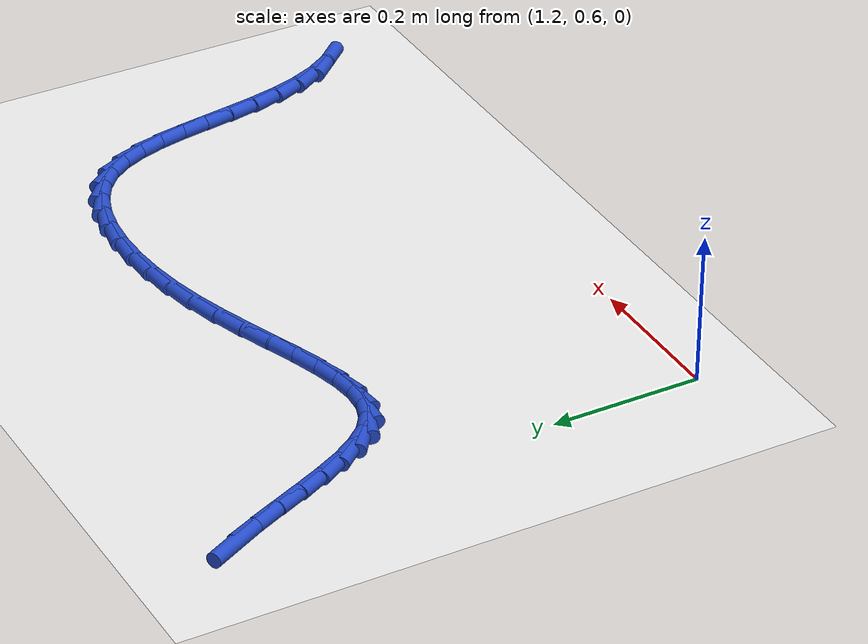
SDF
<sdf version="1.6">
 <world name="default">
  <model name="ground_plane">
   <static>1</static>
   <link name="link">
    <collision name="collision">
     <geometry><plane><normal>0 0 1</normal><size>100 100</size></plane></geometry>
     <surface><friction><ode><mu>100</mu><mu2>50</mu2></ode></friction></surface>
    </collision>
    <visual name="visual">
     <cast_shadows>0</cast_shadows>
     <geometry><plane><normal>0 0 1</normal><size>100 100</size></plane></geometry>
     <material>
      <script><uri>file://media/materials/scripts/gazebo.material</uri><name>Gazebo/WhiteGlow</name></script>
     </material>
    </visual>
   </link>
  </model>
  <model name="line">
   <link name="link_55">
    <pose>1.1598183604236978 1.240889942553588 0.01 0 1.57 -1.0952789635245899</pose>
    <collision name="collision">
     <geometry><cylinder><radius>0.01</radius><length>0.08</length></cylinder></geometry>
    </collision>
    <visual name="visual">
     <material>
      <script><name>Gazebo/Blue</name><uri>file://media/materials/scripts/gazebo.material</uri></script>
     </material>
     <geometry><cylinder><radius>0.01</radius><length>0.08</length></cylinder></geometry>
    </visual>
   </link>
   <link name="link_56">
    <pose>1.178481635220568 1.204645399891093 0.01 0 1.57 -1.139643958567472</pose>
    <collision name="collision">
     <geometry><cylinder><radius>0.01</radius><length>0.08</length></cylinder></geometry>
    </collision>
    <visual name="visual">
     <material>
      <script><name>Gazebo/Blue</name><uri>file://media/materials/scripts/gazebo.material</uri></script>
     </material>
     <geometry><cylinder><radius>0.01</radius><length>0.08</length></cylinder></geometry>
    </visual>
   </link>
   <link name="link_57">
    <pose>1.1956228592819902 1.1673832068081333 0.01 0 1.57 -1.1559299487257806</pose>
    <collision name="collision">
     <geometry><cylinder><radius>0.01</radius><length>0.08</length></cylinder></geometry>
    </collision>
    <visual name="visual">
     <material>
      <script><name>Gazebo/Blue</name><uri>file://media/materials/scripts/gazebo.material</uri></script>
     </material>
     <geometry><cylinder><radius>0.01</radius><length>0.08</length></cylinder></geometry>
    </visual>
   </link>
   <link name="link_58">
    <pose>1.2119254675947835 1.1303679285830492 0.01 0 1.57 -1.1439508892380683</pose>
    <collision name="collision">
     <geometry><cylinder><radius>0.01</radius><length>0.08</length></cylinder></geometry>
    </collision>
    <visual name="visual">
     <material>
      <script><name>Gazebo/Blue</name><uri>file://media/materials/scripts/gazebo.material</uri></script>
     </material>
     <geometry><cylinder><radius>0.01</radius><length>0.08</length></cylinder></geometry>
    </visual>
   </link>
   <link name="link_59">
    <pose>1.2280728951457678 1.0948641304941802 0.01 0 1.57 -1.0995560003882805</pose>
    <collision name="collision">
     <geometry><cylinder><radius>0.01</radius><length>0.08</length></cylinder></geometry>
    </collision>
    <visual name="visual">
     <material>
      <script><name>Gazebo/Blue</name><uri>file://media/materials/scripts/gazebo.material</uri></script>
     </material>
     <geometry><cylinder><radius>0.01</radius><length>0.08</length></cylinder></geometry>
    </visual>
   </link>
   <link name="link_60">
    <pose>1.2447485769217619 1.0621363778198678 0.01 0 1.57 -1.0132528471072597</pose>
    <collision name="collision">
     <geometry><cylinder><radius>0.01</radius><length>0.08</length></cylinder></geometry>
    </collision>
    <visual name="visual">
     <material>
      <script><name>Gazebo/Blue</name><uri>file://media/materials/scripts/gazebo.material</uri></script>
     </material>
     <geometry><cylinder><radius>0.01</radius><length>0.08</length></cylinder></geometry>
    </visual>
   </link>
   <link name="link_61">
    <pose>1.2626359479095854 1.033449235838451 0.01 0 1.57 -0.8685953580897825</pose>
    <collision name="collision">
     <geometry><cylinder><radius>0.01</radius><length>0.08</length></cylinder></geometry>
    </collision>
    <visual name="visual">
     <material>
      <script><name>Gazebo/Blue</name><uri>file://media/materials/scripts/gazebo.material</uri></script>
     </material>
     <geometry><cylinder><radius>0.01</radius><length>0.08</length></cylinder></geometry>
    </visual>
   </link>
   <link name="link_62">
    <pose>1.2824184430960577 1.0100672698282716 0.01 0 1.57 -0.6446859443125712</pose>
    <collision name="collision">
     <geometry><cylinder><radius>0.01</radius><length>0.08</length></cylinder></geometry>
    </collision>
    <visual name="visual">
     <material>
      <script><name>Gazebo/Blue</name><uri>file://media/materials/scripts/gazebo.material</uri></script>
     </material>
     <geometry><cylinder><radius>0.01</radius><length>0.08</length></cylinder></geometry>
    </visual>
   </link>
   <link name="link_63">
    <pose>1.304779497467998 0.9932550450676679 0.01 0 1.57 -0.34712787269608547</pose>
    <collision name="collision">
     <geometry><cylinder><radius>0.01</radius><length>0.08</length></cylinder></geometry>
    </collision>
    <visual name="visual">
     <material>
      <script><name>Gazebo/Blue</name><uri>file://media/materials/scripts/gazebo.material</uri></script>
     </material>
     <geometry><cylinder><radius>0.01</radius><length>0.08</length></cylinder></geometry>
    </visual>
   </link>
   <link name="link_64">
    <pose>1.3303003104585671 0.9840222001581458 0.01 0 1.57 -0.07807522598313596</pose>
    <collision name="collision">
     <geometry><cylinder><radius>0.01</radius><length>0.08</length></cylinder></geometry>
    </collision>
    <visual name="visual">
     <material>
      <script><name>Gazebo/Blue</name><uri>file://media/materials/scripts/gazebo.material</uri></script>
     </material>
     <geometry><cylinder><radius>0.01</radius><length>0.08</length></cylinder></geometry>
    </visual>
   </link>
   <link name="link_65">
    <pose>1.358922267383465 0.9817829826565025 0.01 0 1.57 0.1126037953044279</pose>
    <collision name="collision">
     <geometry><cylinder><radius>0.01</radius><length>0.08</length></cylinder></geometry>
    </collision>
    <visual name="visual">
     <material>
      <script><name>Gazebo/Blue</name><uri>file://media/materials/scripts/gazebo.material</uri></script>
     </material>
     <geometry><cylinder><radius>0.01</radius><length>0.08</length></cylinder></geometry>
    </visual>
   </link>
   <link name="link_66">
    <pose>1.3903397533080506 0.9853357393810549 0.01 0 1.57 0.23565966130081162</pose>
    <collision name="collision">
     <geometry><cylinder><radius>0.01</radius><length>0.08</length></cylinder></geometry>
    </collision>
    <visual name="visual">
     <material>
      <script><name>Gazebo/Blue</name><uri>file://media/materials/scripts/gazebo.material</uri></script>
     </material>
     <geometry><cylinder><radius>0.01</radius><length>0.08</length></cylinder></geometry>
    </visual>
   </link>
   <link name="link_67">
    <pose>1.4242466255802237 0.9934775012746451 0.01 0 1.57 0.30917404496661555</pose>
    <collision name="collision">
     <geometry><cylinder><radius>0.01</radius><length>0.08</length></cylinder></geometry>
    </collision>
    <visual name="visual">
     <material>
      <script><name>Gazebo/Blue</name><uri>file://media/materials/scripts/gazebo.material</uri></script>
     </material>
     <geometry><cylinder><radius>0.01</radius><length>0.08</length></cylinder></geometry>
    </visual>
   </link>
   <link name="link_68">
    <pose>1.4603367415478867 1.005005299280116 0.01 0 1.57 0.3465500750092205</pose>
    <collision name="collision">
     <geometry><cylinder><radius>0.01</radius><length>0.08</length></cylinder></geometry>
    </collision>
    <visual name="visual">
     <material>
      <script><name>Gazebo/Blue</name><uri>file://media/materials/scripts/gazebo.material</uri></script>
     </material>
     <geometry><cylinder><radius>0.01</radius><length>0.08</length></cylinder></geometry>
    </visual>
   </link>
   <link name="link_69">
    <pose>1.4983039585589404 1.0187161643403104 0.01 0 1.57 0.3557548991404628</pose>
    <collision name="collision">
     <geometry><cylinder><radius>0.01</radius><length>0.08</length></cylinder></geometry>
    </collision>
    <visual name="visual">
     <material>
      <script><name>Gazebo/Blue</name><uri>file://media/materials/scripts/gazebo.material</uri></script>
     </material>
     <geometry><cylinder><radius>0.01</radius><length>0.08</length></cylinder></geometry>
    </visual>
   </link>
   <link name="link_70">
    <pose>1.5378421339612864 1.0334071273980712 0.01 0 1.57 0.3407528009899024</pose>
    <collision name="collision">
     <geometry><cylinder><radius>0.01</radius><length>0.08</length></cylinder></geometry>
    </collision>
    <visual name="visual">
     <material>
      <script><name>Gazebo/Blue</name><uri>file://media/materials/scripts/gazebo.material</uri></script>
     </material>
     <geometry><cylinder><radius>0.01</radius><length>0.08</length></cylinder></geometry>
    </visual>
   </link>
   <link name="link_71">
    <pose>1.5786451251028253 1.0478752193962404 0.01 0 1.57 0.30270448738215494</pose>
    <collision name="collision">
     <geometry><cylinder><radius>0.01</radius><length>0.08</length></cylinder></geometry>
    </collision>
    <visual name="visual">
     <material>
      <script><name>Gazebo/Blue</name><uri>file://media/materials/scripts/gazebo.material</uri></script>
     </material>
     <geometry><cylinder><radius>0.01</radius><length>0.08</length></cylinder></geometry>
    </visual>
   </link>
   <link name="link_72">
    <pose>1.62040678933146 1.0609174712776617 0.01 0 1.57 0.24243834349626506</pose>
    <collision name="collision">
     <geometry><cylinder><radius>0.01</radius><length>0.08</length></cylinder></geometry>
    </collision>
    <visual name="visual">
     <material>
      <script><name>Gazebo/Blue</name><uri>file://media/materials/scripts/gazebo.material</uri></script>
     </material>
     <geometry><cylinder><radius>0.01</radius><length>0.08</length></cylinder></geometry>
    </visual>
   </link>
   <link name="link_73">
    <pose>1.6627934653189038 1.0713998072025657 0.01 0 1.57 0.17215603265799068</pose>
    <collision name="collision">
     <geometry><cylinder><radius>0.01</radius><length>0.08</length></cylinder></geometry>
    </collision>
    <visual name="visual">
     <material>
      <script><name>Gazebo/Blue</name><uri>file://media/materials/scripts/gazebo.material</uri></script>
     </material>
     <geometry><cylinder><radius>0.01</radius><length>0.08</length></cylinder></geometry>
    </visual>
   </link>
   <link name="link_74">
    <pose>1.7052352940850517 1.078779473968361 0.01 0 1.57 0.09622256669749692</pose>
    <collision name="collision">
     <geometry><cylinder><radius>0.01</radius><length>0.08</length></cylinder></geometry>
    </collision>
    <visual name="visual">
     <material>
      <script><name>Gazebo/Blue</name><uri>file://media/materials/scripts/gazebo.material</uri></script>
     </material>
     <geometry><cylinder><radius>0.01</radius><length>0.08</length></cylinder></geometry>
    </visual>
   </link>
   <link name="link_75">
    <pose>1.7470421917133776 1.082814702425044 0.01 0 1.57 0.011150624281791624</pose>
    <collision name="collision">
     <geometry><cylinder><radius>0.01</radius><length>0.08</length></cylinder></geometry>
    </collision>
    <visual name="visual">
     <material>
      <script><name>Gazebo/Blue</name><uri>file://media/materials/scripts/gazebo.material</uri></script>
     </material>
     <geometry><cylinder><radius>0.01</radius><length>0.08</length></cylinder></geometry>
    </visual>
   </link>
   <link name="link_76">
    <pose>1.7875231214842948 1.0832661087724023 0.01 0 1.57 -0.08743783355212655</pose>
    <collision name="collision">
     <geometry><cylinder><radius>0.01</radius><length>0.08</length></cylinder></geometry>
    </collision>
    <visual name="visual">
     <material>
      <script><name>Gazebo/Blue</name><uri>file://media/materials/scripts/gazebo.material</uri></script>
     </material>
     <geometry><cylinder><radius>0.01</radius><length>0.08</length></cylinder></geometry>
    </visual>
   </link>
   <link name="link_77">
    <pose>1.8259870466782155 1.0798943092102227 0.01 0 1.57 -0.20499991087251118</pose>
    <collision name="collision">
     <geometry><cylinder><radius>0.01</radius><length>0.08</length></cylinder></geometry>
    </collision>
    <visual name="visual">
     <material>
      <script><name>Gazebo/Blue</name><uri>file://media/materials/scripts/gazebo.material</uri></script>
     </material>
     <geometry><cylinder><radius>0.01</radius><length>0.08</length></cylinder></geometry>
    </visual>
   </link>
   <link name="link_78">
    <pose>1.861742930575553 1.072459919938292 0.01 0 1.57 -0.3479587500149129</pose>
    <collision name="collision">
     <geometry><cylinder><radius>0.01</radius><length>0.08</length></cylinder></geometry>
    </collision>
    <visual name="visual">
     <material>
      <script><name>Gazebo/Blue</name><uri>file://media/materials/scripts/gazebo.material</uri></script>
     </material>
     <geometry><cylinder><radius>0.01</radius><length>0.08</length></cylinder></geometry>
    </visual>
   </link>
   <link name="link_79">
    <pose>1.8940997364567196 1.060723557156398 0.01 0 1.57 -0.5224820349245862</pose>
    <collision name="collision">
     <geometry><cylinder><radius>0.01</radius><length>0.08</length></cylinder></geometry>
    </collision>
    <visual name="visual">
     <material>
      <script><name>Gazebo/Blue</name><uri>file://media/materials/scripts/gazebo.material</uri></script>
     </material>
     <geometry><cylinder><radius>0.01</radius><length>0.08</length></cylinder></geometry>
    </visual>
   </link>
   <link name="link_80">
    <pose>1.9223664276021293 1.0444458370643277 0.01 0 1.57 -0.7309646098910864</pose>
    <collision name="collision">
     <geometry><cylinder><radius>0.01</radius><length>0.08</length></cylinder></geometry>
    </collision>
    <visual name="visual">
     <material>
      <script><name>Gazebo/Blue</name><uri>file://media/materials/scripts/gazebo.material</uri></script>
     </material>
     <geometry><cylinder><radius>0.01</radius><length>0.08</length></cylinder></geometry>
    </visual>
   </link>
   <link name="link_81">
    <pose>1.9458519719267142 1.0233873787271073 0.01 0 1.57 -0.9550089361808985</pose>
    <collision name="collision">
     <geometry><cylinder><radius>0.01</radius><length>0.08</length></cylinder></geometry>
    </collision>
    <visual name="visual">
     <material>
      <script><name>Gazebo/Blue</name><uri>file://media/materials/scripts/gazebo.material</uri></script>
     </material>
     <geometry><cylinder><radius>0.01</radius><length>0.08</length></cylinder></geometry>
    </visual>
   </link>
   <link name="link_82">
    <pose>1.9641707485093025 0.9974976181544024 0.01 0 1.57 -1.1378604741361094</pose>
    <collision name="collision">
     <geometry><cylinder><radius>0.01</radius><length>0.08</length></cylinder></geometry>
    </collision>
    <visual name="visual">
     <material>
      <script><name>Gazebo/Blue</name><uri>file://media/materials/scripts/gazebo.material</uri></script>
     </material>
     <geometry><cylinder><radius>0.01</radius><length>0.08</length></cylinder></geometry>
    </visual>
   </link>
   <link name="link_83">
    <pose>1.9780692633682917 0.9674259158345636 0.01 0 1.57 -1.2669212210305538</pose>
    <collision name="collision">
     <geometry><cylinder><radius>0.01</radius><length>0.08</length></cylinder></geometry>
    </collision>
    <visual name="visual">
     <material>
      <script><name>Gazebo/Blue</name><uri>file://media/materials/scripts/gazebo.material</uri></script>
     </material>
     <geometry><cylinder><radius>0.01</radius><length>0.08</length></cylinder></geometry>
    </visual>
   </link>
   <link name="link_84">
    <pose>1.9885562924318203 0.9339837776156492 0.01 0 1.57 -1.3499028560682567</pose>
    <collision name="collision">
     <geometry><cylinder><radius>0.01</radius><length>0.08</length></cylinder></geometry>
    </collision>
    <visual name="visual">
     <material>
      <script><name>Gazebo/Blue</name><uri>file://media/materials/scripts/gazebo.material</uri></script>
     </material>
     <geometry><cylinder><radius>0.01</radius><length>0.08</length></cylinder></geometry>
    </visual>
   </link>
   <link name="link_85">
    <pose>1.9966406116280264 0.8979827093457162 0.01 0 1.57 -1.3953820982020986</pose>
    <collision name="collision">
     <geometry><cylinder><radius>0.01</radius><length>0.08</length></cylinder></geometry>
    </collision>
    <visual name="visual">
     <material>
      <script><name>Gazebo/Blue</name><uri>file://media/materials/scripts/gazebo.material</uri></script>
     </material>
     <geometry><cylinder><radius>0.01</radius><length>0.08</length></cylinder></geometry>
    </visual>
   </link>
   <link name="link_86">
    <pose>2.0033309968850483 0.860234216872823 0.01 0 1.57 -1.4092256773859506</pose>
    <collision name="collision">
     <geometry><cylinder><radius>0.01</radius><length>0.08</length></cylinder></geometry>
    </collision>
    <visual name="visual">
     <material>
      <script><name>Gazebo/Blue</name><uri>file://media/materials/scripts/gazebo.material</uri></script>
     </material>
     <geometry><cylinder><radius>0.01</radius><length>0.08</length></cylinder></geometry>
    </visual>
   </link>
   <link name="link_87">
    <pose>2.0096362241310244 0.8215498060450264 0.01 0 1.57 -1.3941199797686152</pose>
    <collision name="collision">
     <geometry><cylinder><radius>0.01</radius><length>0.08</length></cylinder></geometry>
    </collision>
    <visual name="visual">
     <material>
      <script><name>Gazebo/Blue</name><uri>file://media/materials/scripts/gazebo.material</uri></script>
     </material>
     <geometry><cylinder><radius>0.01</radius><length>0.08</length></cylinder></geometry>
    </visual>
   </link>
   <link name="link_88">
    <pose>2.0165650692940935 0.7827409827103852 0.01 0 1.57 -1.3498851564159828</pose>
    <collision name="collision">
     <geometry><cylinder><radius>0.01</radius><length>0.08</length></cylinder></geometry>
    </collision>
    <visual name="visual">
     <material>
      <script><name>Gazebo/Blue</name><uri>file://media/materials/scripts/gazebo.material</uri></script>
     </material>
     <geometry><cylinder><radius>0.01</radius><length>0.08</length></cylinder></geometry>
    </visual>
   </link>
   <link name="link_89">
    <pose>2.025126308302393 0.7446192527169561 0.01 0 1.57 -1.2739506706602628</pose>
    <collision name="collision">
     <geometry><cylinder><radius>0.01</radius><length>0.08</length></cylinder></geometry>
    </collision>
    <visual name="visual">
     <material>
      <script><name>Gazebo/Blue</name><uri>file://media/materials/scripts/gazebo.material</uri></script>
     </material>
     <geometry><cylinder><radius>0.01</radius><length>0.08</length></cylinder></geometry>
    </visual>
   </link>
   <link name="link_90">
    <pose>2.036328717084063 0.7079961219127979 0.01 0 1.57 -1.1622964423189384</pose>
    <collision name="collision">
     <geometry><cylinder><radius>0.01</radius><length>0.08</length></cylinder></geometry>
    </collision>
    <visual name="visual">
     <material>
      <script><name>Gazebo/Blue</name><uri>file://media/materials/scripts/gazebo.material</uri></script>
     </material>
     <geometry><cylinder><radius>0.01</radius><length>0.08</length></cylinder></geometry>
    </visual>
   </link>
   <link name="link_91">
    <pose>2.0511810715672407 0.6736830961459672 0.01 0 1.57 -1.0118180442099514</pose>
    <collision name="collision">
     <geometry><cylinder><radius>0.01</radius><length>0.08</length></cylinder></geometry>
    </collision>
    <visual name="visual">
     <material>
      <script><name>Gazebo/Blue</name><uri>file://media/materials/scripts/gazebo.material</uri></script>
     </material>
     <geometry><cylinder><radius>0.01</radius><length>0.08</length></cylinder></geometry>
    </visual>
   </link>
   <link name="link_92">
    <pose>2.070692147680065 0.6424916812645228 0.01 0 1.57 -0.8264127249337694</pose>
    <collision name="collision">
     <geometry><cylinder><radius>0.01</radius><length>0.08</length></cylinder></geometry>
    </collision>
    <visual name="visual">
     <material>
      <script><name>Gazebo/Blue</name><uri>file://media/materials/scripts/gazebo.material</uri></script>
     </material>
     <geometry><cylinder><radius>0.01</radius><length>0.08</length></cylinder></geometry>
    </visual>
   </link>
  </model>
 </world>
</sdf>
